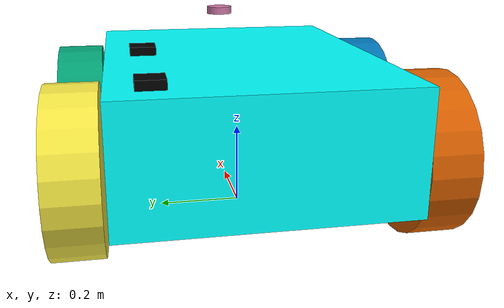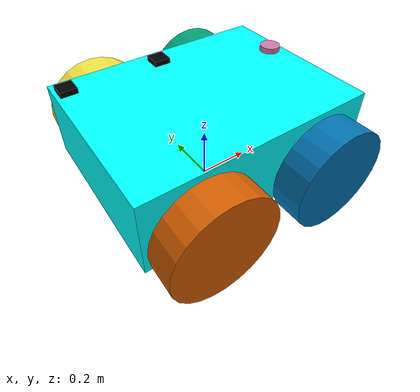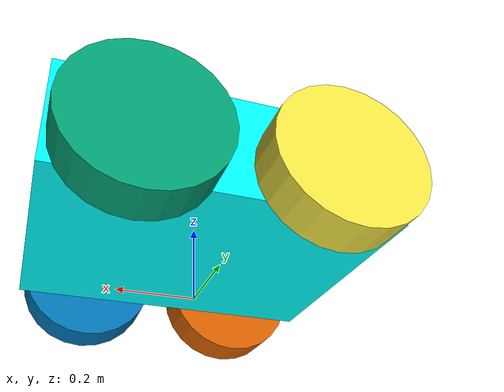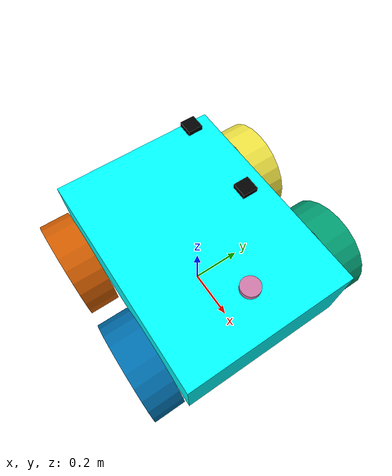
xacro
<?xml version="1.0"?>
<robot name="p05l" xmlns:xacro="http://ros.org/wiki/xacro">
  <!-- ===== Constants ===== -->
  <xacro:arg name="prefix" default=""/>
  <xacro:property name="prefix" value="$(arg prefix)"/>

  <xacro:property name="base_width"    value="0.65"/>
  <xacro:property name="base_length"   value="0.8626"/>
  <xacro:property name="base_height"   value="0.283"/>

  <xacro:property name="wheel_radius"  value="0.19"/>
  <xacro:property name="wheel_width"   value="0.114"/>
  <xacro:property name="wheel_ygap"    value="0.391"/>
  <xacro:property name="wheel_zoff"    value="-0.06025"/>

  <xacro:property name="wheel_base" value="0.460"/>
  <xacro:property name="x_front" value="${  wheel_base/2}"/>
  <xacro:property name="x_rear" value="${  -wheel_base/2}"/>

  <!-- ROBOT BASE -->
  <link name="${prefix}base_link">
    <visual>
      <geometry>
        <box size="${base_length} ${base_width} ${base_height}"/>
      </geometry>
      <material name="Cyan">
        <color rgba="0 1.0 1.0 1.0"/>
      </material>
    </visual>

    <collision>
      <geometry>
        <box size="${base_length} ${base_width} ${base_height}"/>
      </geometry>
    </collision>
  </link>

  <!-- ROBOT FOOTPRINT -->
  <link name="${prefix}base_footprint"/>

  <joint name="${prefix}base_joint" type="fixed">
    <parent link="${prefix}base_footprint"/>
    <child link="${prefix}base_link"/>
    <origin xyz="0.0 0.0 ${wheel_radius-wheel_zoff}" rpy="0 0 0"/>
  </joint>

  <!-- WHEELS -->
  <xacro:macro name="wheel" params="name x y z">
    <link name="${prefix}${name}_link">
      <visual>
        <origin rpy="-1.57079632679 0 0"/>
        <geometry>
          <cylinder radius="${wheel_radius}" length="${wheel_width}"/>
        </geometry>
      </visual>
      <collision>
        <origin rpy="-1.57079632679 0 0"/>
        <geometry>
          <cylinder radius="${wheel_radius}" length="${wheel_width}"/>
        </geometry>
      </collision>
    </link>

    <joint name="${prefix}${name}_joint" type="continuous">
      <parent link="${prefix}base_link"/>
      <child link="${prefix}${name}_link"/>
      <origin xyz="${x} ${y} ${z}"/>
      <axis xyz="0 1 0"/>
    </joint>
  </xacro:macro>

  <xacro:wheel name="lf_wheel" x="${x_front}" y="${ wheel_ygap}" z="${wheel_zoff}"/>
  <xacro:wheel name="lr_wheel" x="${x_rear }" y="${ wheel_ygap}" z="${wheel_zoff}"/>
  <xacro:wheel name="rf_wheel" x="${x_front}" y="${-wheel_ygap}" z="${wheel_zoff}"/>
  <xacro:wheel name="rr_wheel" x="${x_rear }" y="${-wheel_ygap}" z="${wheel_zoff}"/>

  <!-- Laser -->
  <link name="${prefix}laser">
    <visual>
      <origin xyz="0 0 0" rpy="0 0 0"/>
      <geometry>
        <cylinder radius="0.035" length="0.02"/>
      </geometry>
    </visual>
  </link>

  <joint name="${prefix}laser_joint" type="fixed">
    <parent link="${prefix}base_link"/>
    <child link="${prefix}laser"/>
    <origin xyz="0.287 0 0.216" rpy="0 0 3.14"/>
  </joint>

  <!-- IMU -->
  <link name="${prefix}imu_link">
    <visual>
      <geometry>
        <box size="0.04 0.045 0.02"/>
      </geometry>
      <material name="gray">
        <color rgba="0.6 0.6 0.6 1"/>
      </material>
    </visual>
  </link>

  <joint name="${prefix}imu_joint" type="fixed">
    <parent link="${prefix}base_link"/>
    <child link="${prefix}imu_link"/>
    <origin xyz="0 0 0.01" rpy="0 0 0"/>
  </joint>

  <!-- MOBING BASE-->
  <link name="${prefix}gps_base">
    <visual>
      <geometry>
        <box size="0.06 0.06 0.02"/>
      </geometry>
      <material name="balck">
        <color rgba="0 0 0 1"/>
      </material>
    </visual>
  </link>

  <joint name="${prefix}gps_base_joint" type="fixed">
    <parent link="${prefix}base_link"/>
    <child link="${prefix}gps_base"/>
    <origin xyz="-0.391 0.234 0.165" rpy="0 0 0"/>
  </joint>

  <!-- ROVER -->
  <link name="${prefix}gps_rover">
    <visual>
      <geometry>
        <box size="0.06 0.06 0.02"/>
      </geometry>
      <material name="black">
        <color rgba="0 0 0 1"/>
      </material>
    </visual>
  </link>

  <joint name="${prefix}gps_rover_joint" type="fixed">
    <parent link="${prefix}base_link"/>
    <child link="${prefix}gps_rover"/>
    <origin xyz="-0.041 0.234 0.165" rpy="0 0 0"/>
  </joint>
</robot>
